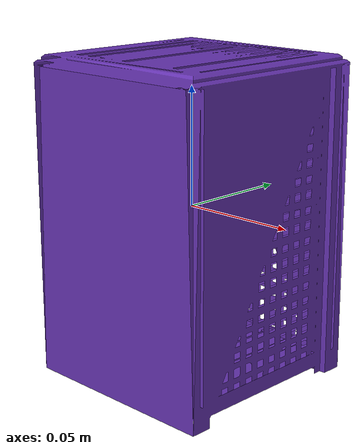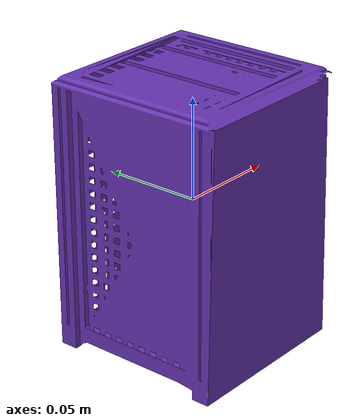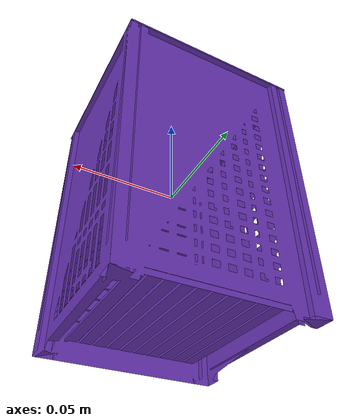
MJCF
<mujoco model="top_watertight_tiny">
  <default>
    <default group="2" type="mesh" contype="0" conaffinity="0">
      <geom group="2" type="mesh" contype="0" conaffinity="0"/>
    </default>
    <default group="3" type="mesh">
      <geom group="3" type="mesh"/>
    </default>
  </default>
  <asset>
    <mesh file="top_watertight_tiny.obj"/>
    <mesh file="top_watertight_tiny_collision_0.obj"/>
    <mesh file="top_watertight_tiny_collision_1.obj"/>
    <mesh file="top_watertight_tiny_collision_2.obj"/>
    <mesh file="top_watertight_tiny_collision_3.obj"/>
    <mesh file="top_watertight_tiny_collision_4.obj"/>
    <mesh file="top_watertight_tiny_collision_5.obj"/>
    <mesh file="top_watertight_tiny_collision_6.obj"/>
    <mesh file="top_watertight_tiny_collision_7.obj"/>
    <mesh file="top_watertight_tiny_collision_8.obj"/>
    <mesh file="top_watertight_tiny_collision_9.obj"/>
    <mesh file="top_watertight_tiny_collision_10.obj"/>
    <mesh file="top_watertight_tiny_collision_11.obj"/>
    <mesh file="top_watertight_tiny_collision_12.obj"/>
    <mesh file="top_watertight_tiny_collision_13.obj"/>
    <mesh file="top_watertight_tiny_collision_14.obj"/>
    <mesh file="top_watertight_tiny_collision_15.obj"/>
    <mesh file="top_watertight_tiny_collision_16.obj"/>
    <mesh file="top_watertight_tiny_collision_17.obj"/>
    <mesh file="top_watertight_tiny_collision_18.obj"/>
    <mesh file="top_watertight_tiny_collision_19.obj"/>
    <mesh file="top_watertight_tiny_collision_20.obj"/>
    <mesh file="top_watertight_tiny_collision_21.obj"/>
    <mesh file="top_watertight_tiny_collision_22.obj"/>
    <mesh file="top_watertight_tiny_collision_23.obj"/>
    <mesh file="top_watertight_tiny_collision_24.obj"/>
    <mesh file="top_watertight_tiny_collision_25.obj"/>
    <mesh file="top_watertight_tiny_collision_26.obj"/>
    <mesh file="top_watertight_tiny_collision_27.obj"/>
    <mesh file="top_watertight_tiny_collision_28.obj"/>
    <mesh file="top_watertight_tiny_collision_29.obj"/>
    <mesh file="top_watertight_tiny_collision_30.obj"/>
    <mesh file="top_watertight_tiny_collision_31.obj"/>
    <mesh file="top_watertight_tiny_collision_32.obj"/>
    <mesh file="top_watertight_tiny_collision_33.obj"/>
    <mesh file="top_watertight_tiny_collision_34.obj"/>
    <mesh file="top_watertight_tiny_collision_35.obj"/>
    <mesh file="top_watertight_tiny_collision_36.obj"/>
    <mesh file="top_watertight_tiny_collision_37.obj"/>
    <mesh file="top_watertight_tiny_collision_38.obj"/>
    <mesh file="top_watertight_tiny_collision_39.obj"/>
    <mesh file="top_watertight_tiny_collision_40.obj"/>
    <mesh file="top_watertight_tiny_collision_41.obj"/>
    <mesh file="top_watertight_tiny_collision_42.obj"/>
    <mesh file="top_watertight_tiny_collision_43.obj"/>
    <mesh file="top_watertight_tiny_collision_44.obj"/>
    <mesh file="top_watertight_tiny_collision_45.obj"/>
    <mesh file="top_watertight_tiny_collision_46.obj"/>
    <mesh file="top_watertight_tiny_collision_47.obj"/>
    <mesh file="top_watertight_tiny_collision_48.obj"/>
    <mesh file="top_watertight_tiny_collision_49.obj"/>
    <mesh file="top_watertight_tiny_collision_50.obj"/>
    <mesh file="top_watertight_tiny_collision_51.obj"/>
    <mesh file="top_watertight_tiny_collision_52.obj"/>
    <mesh file="top_watertight_tiny_collision_53.obj"/>
    <mesh file="top_watertight_tiny_collision_54.obj"/>
    <mesh file="top_watertight_tiny_collision_55.obj"/>
    <mesh file="top_watertight_tiny_collision_56.obj"/>
    <mesh file="top_watertight_tiny_collision_57.obj"/>
    <mesh file="top_watertight_tiny_collision_58.obj"/>
    <mesh file="top_watertight_tiny_collision_59.obj"/>
    <mesh file="top_watertight_tiny_collision_60.obj"/>
    <mesh file="top_watertight_tiny_collision_61.obj"/>
    <mesh file="top_watertight_tiny_collision_62.obj"/>
    <mesh file="top_watertight_tiny_collision_63.obj"/>
    <mesh file="top_watertight_tiny_collision_64.obj"/>
    <mesh file="top_watertight_tiny_collision_65.obj"/>
    <mesh file="top_watertight_tiny_collision_66.obj"/>
    <mesh file="top_watertight_tiny_collision_67.obj"/>
    <mesh file="top_watertight_tiny_collision_68.obj"/>
    <mesh file="top_watertight_tiny_collision_69.obj"/>
    <mesh file="top_watertight_tiny_collision_70.obj"/>
    <mesh file="top_watertight_tiny_collision_71.obj"/>
    <mesh file="top_watertight_tiny_collision_72.obj"/>
    <mesh file="top_watertight_tiny_collision_73.obj"/>
    <mesh file="top_watertight_tiny_collision_74.obj"/>
    <mesh file="top_watertight_tiny_collision_75.obj"/>
    <mesh file="top_watertight_tiny_collision_76.obj"/>
    <mesh file="top_watertight_tiny_collision_77.obj"/>
    <mesh file="top_watertight_tiny_collision_78.obj"/>
    <mesh file="top_watertight_tiny_collision_79.obj"/>
    <mesh file="top_watertight_tiny_collision_80.obj"/>
    <mesh file="top_watertight_tiny_collision_81.obj"/>
    <mesh file="top_watertight_tiny_collision_82.obj"/>
    <mesh file="top_watertight_tiny_collision_83.obj"/>
    <mesh file="top_watertight_tiny_collision_84.obj"/>
    <mesh file="top_watertight_tiny_collision_85.obj"/>
    <mesh file="top_watertight_tiny_collision_86.obj"/>
    <mesh file="top_watertight_tiny_collision_87.obj"/>
    <mesh file="top_watertight_tiny_collision_88.obj"/>
    <mesh file="top_watertight_tiny_collision_89.obj"/>
    <mesh file="top_watertight_tiny_collision_90.obj"/>
    <mesh file="top_watertight_tiny_collision_91.obj"/>
    <mesh file="top_watertight_tiny_collision_92.obj"/>
    <mesh file="top_watertight_tiny_collision_93.obj"/>
    <mesh file="top_watertight_tiny_collision_94.obj"/>
    <mesh file="top_watertight_tiny_collision_95.obj"/>
    <mesh file="top_watertight_tiny_collision_96.obj"/>
    <mesh file="top_watertight_tiny_collision_97.obj"/>
    <mesh file="top_watertight_tiny_collision_98.obj"/>
    <mesh file="top_watertight_tiny_collision_99.obj"/>
    <mesh file="top_watertight_tiny_collision_100.obj"/>
    <mesh file="top_watertight_tiny_collision_101.obj"/>
    <mesh file="top_watertight_tiny_collision_102.obj"/>
    <mesh file="top_watertight_tiny_collision_103.obj"/>
    <mesh file="top_watertight_tiny_collision_104.obj"/>
    <mesh file="top_watertight_tiny_collision_105.obj"/>
  </asset>
  <worldbody>
    <body name="top_watertight_tiny">
      <freejoint/>
      <geom mesh="top_watertight_tiny" group="2" type="mesh" rgba="0.4 0.2 0.7 1" contype="0" conaffinity="0"/>
      <geom mesh="top_watertight_tiny_collision_0" rgba="0.5214946148187062 0.6669990542578045 0.8893366383085172 1" group="3" type="mesh"/>
      <geom mesh="top_watertight_tiny_collision_1" rgba="0.25444723116024826 0.9374718286948988 0.1537972195743641 1" group="3" type="mesh"/>
      <geom mesh="top_watertight_tiny_collision_2" rgba="0.9871513610902786 0.5377261018294861 0.2691533615294954 1" group="3" type="mesh"/>
      <geom mesh="top_watertight_tiny_collision_3" rgba="0.24095902390836577 0.6345189449393268 0.9108104584195411 1" group="3" type="mesh"/>
      <geom mesh="top_watertight_tiny_collision_4" rgba="0.9261801332772949 0.3490811383539132 0.35193820045444646 1" group="3" type="mesh"/>
      <geom mesh="top_watertight_tiny_collision_5" rgba="0.19145840845345719 0.8375736521248036 0.7001198120105625 1" group="3" type="mesh"/>
      <geom mesh="top_watertight_tiny_collision_6" rgba="0.2339160132582031 0.2683003287585475 0.9849079710416163 1" group="3" type="mesh"/>
      <geom mesh="top_watertight_tiny_collision_7" rgba="0.06501598970905353 0.18320358514540402 0.2477250747525459 1" group="3" type="mesh"/>
      <geom mesh="top_watertight_tiny_collision_8" rgba="0.05121917701069789 0.6727602072884764 0.1170273498442872 1" group="3" type="mesh"/>
      <geom mesh="top_watertight_tiny_collision_9" rgba="0.10018089649843942 0.25374391122562745 0.2908030783480907 1" group="3" type="mesh"/>
      <geom mesh="top_watertight_tiny_collision_10" rgba="0.3723536425405063 0.4966341737991662 0.8568674919929754 1" group="3" type="mesh"/>
      <geom mesh="top_watertight_tiny_collision_11" rgba="0.16541806524481373 0.767483815778387 0.9301554923666598 1" group="3" type="mesh"/>
      <geom mesh="top_watertight_tiny_collision_12" rgba="0.618661061814672 0.6826177884880702 0.18867126372674559 1" group="3" type="mesh"/>
      <geom mesh="top_watertight_tiny_collision_13" rgba="0.11206403953633648 0.8696490254580189 0.3103200517205673 1" group="3" type="mesh"/>
      <geom mesh="top_watertight_tiny_collision_14" rgba="0.3337787760180637 0.925635184077848 0.9483719259095903 1" group="3" type="mesh"/>
      <geom mesh="top_watertight_tiny_collision_15" rgba="0.04851460555212295 0.5587700428104783 0.43490342623124023 1" group="3" type="mesh"/>
      <geom mesh="top_watertight_tiny_collision_16" rgba="0.22848770632677673 0.18076124138612848 0.9412212345120542 1" group="3" type="mesh"/>
      <geom mesh="top_watertight_tiny_collision_17" rgba="0.24229757607879554 0.47236287243786057 0.051513674444098045 1" group="3" type="mesh"/>
      <geom mesh="top_watertight_tiny_collision_18" rgba="0.6371639965687961 0.1626568003594715 0.21453245876339477 1" group="3" type="mesh"/>
      <geom mesh="top_watertight_tiny_collision_19" rgba="0.32415421164651326 0.4429768132779627 0.6408382269302618 1" group="3" type="mesh"/>
      <geom mesh="top_watertight_tiny_collision_20" rgba="0.6316488094815069 0.5862515407718126 0.7544320165269829 1" group="3" type="mesh"/>
      <geom mesh="top_watertight_tiny_collision_21" rgba="0.7292035942615932 0.628629839277002 0.9104558179988234 1" group="3" type="mesh"/>
      <geom mesh="top_watertight_tiny_collision_22" rgba="0.6156395534756968 0.006146065455576055 0.4172408688510195 1" group="3" type="mesh"/>
      <geom mesh="top_watertight_tiny_collision_23" rgba="0.30127789130793925 0.9139777110014912 0.11108753359640955 1" group="3" type="mesh"/>
      <geom mesh="top_watertight_tiny_collision_24" rgba="0.026725239312858973 0.08924585173306199 0.3110202360265971 1" group="3" type="mesh"/>
      <geom mesh="top_watertight_tiny_collision_25" rgba="0.30192634728762346 0.023070983622084484 0.3645186635849812 1" group="3" type="mesh"/>
      <geom mesh="top_watertight_tiny_collision_26" rgba="0.40057462254227894 0.1515321153025193 0.5969567867732081 1" group="3" type="mesh"/>
      <geom mesh="top_watertight_tiny_collision_27" rgba="0.9012852206445593 0.1365032297218306 0.7656942592995521 1" group="3" type="mesh"/>
      <geom mesh="top_watertight_tiny_collision_28" rgba="0.38140991735961804 0.14864106251398457 0.47937455664048245 1" group="3" type="mesh"/>
      <geom mesh="top_watertight_tiny_collision_29" rgba="0.39805060459888364 0.9459543608933446 0.9775925107590286 1" group="3" type="mesh"/>
      <geom mesh="top_watertight_tiny_collision_30" rgba="0.3192490673052353 0.9357361690788737 0.21795103420667394 1" group="3" type="mesh"/>
      <geom mesh="top_watertight_tiny_collision_31" rgba="0.45098489043851064 0.7735737420448953 0.7767367202803706 1" group="3" type="mesh"/>
      <geom mesh="top_watertight_tiny_collision_32" rgba="0.7169917684382984 0.6934761280067187 0.673408846081604 1" group="3" type="mesh"/>
      <geom mesh="top_watertight_tiny_collision_33" rgba="0.4657038815370592 0.8352778926026238 0.3665757258146457 1" group="3" type="mesh"/>
      <geom mesh="top_watertight_tiny_collision_34" rgba="0.2931030062247908 0.6219014902896546 0.9585478961962327 1" group="3" type="mesh"/>
      <geom mesh="top_watertight_tiny_collision_35" rgba="0.5470721148842209 0.719120446763223 0.5252033409289124 1" group="3" type="mesh"/>
      <geom mesh="top_watertight_tiny_collision_36" rgba="0.6371060177474516 0.7240222145918215 0.42318740788854425 1" group="3" type="mesh"/>
      <geom mesh="top_watertight_tiny_collision_37" rgba="0.8838873758563892 0.3630560528435878 0.13048258776806154 1" group="3" type="mesh"/>
      <geom mesh="top_watertight_tiny_collision_38" rgba="0.23120763112654852 0.33453389956065904 0.0575847152587583 1" group="3" type="mesh"/>
      <geom mesh="top_watertight_tiny_collision_39" rgba="0.44726514620479196 0.07481650964256348 0.2337433147571949 1" group="3" type="mesh"/>
      <geom mesh="top_watertight_tiny_collision_40" rgba="0.21169151033773392 0.8281501260560141 0.8370771588450561 1" group="3" type="mesh"/>
      <geom mesh="top_watertight_tiny_collision_41" rgba="0.2682083701151 0.8215168396734152 0.1833473876493994 1" group="3" type="mesh"/>
      <geom mesh="top_watertight_tiny_collision_42" rgba="0.8334882194448824 0.26479260690413475 0.6217071112089138 1" group="3" type="mesh"/>
      <geom mesh="top_watertight_tiny_collision_43" rgba="0.13728686413640134 0.8033849959412734 0.1702292550309623 1" group="3" type="mesh"/>
      <geom mesh="top_watertight_tiny_collision_44" rgba="0.9596290120715917 0.291187402668699 0.3025222324747249 1" group="3" type="mesh"/>
      <geom mesh="top_watertight_tiny_collision_45" rgba="0.8120043909024145 0.9702972689832672 0.878358918692162 1" group="3" type="mesh"/>
      <geom mesh="top_watertight_tiny_collision_46" rgba="0.23271538290584348 0.8786463534191177 0.7550433045385357 1" group="3" type="mesh"/>
      <geom mesh="top_watertight_tiny_collision_47" rgba="0.4085569217941195 0.4471677232737812 0.3280102288552875 1" group="3" type="mesh"/>
      <geom mesh="top_watertight_tiny_collision_48" rgba="0.2903137460219447 0.5821513837257336 0.04471348533775965 1" group="3" type="mesh"/>
      <geom mesh="top_watertight_tiny_collision_49" rgba="0.7405309846908289 0.1563249945863211 0.8235221057723104 1" group="3" type="mesh"/>
      <geom mesh="top_watertight_tiny_collision_50" rgba="0.5350022243914291 0.4501150921788586 0.11676513501223296 1" group="3" type="mesh"/>
      <geom mesh="top_watertight_tiny_collision_51" rgba="0.1264538358192605 0.7382140895444965 0.2608990917296362 1" group="3" type="mesh"/>
      <geom mesh="top_watertight_tiny_collision_52" rgba="0.5442698917802132 0.4704588543503325 0.3820337360030833 1" group="3" type="mesh"/>
      <geom mesh="top_watertight_tiny_collision_53" rgba="0.29565156760132705 0.3143336600201908 0.8101102107153221 1" group="3" type="mesh"/>
      <geom mesh="top_watertight_tiny_collision_54" rgba="0.21100451831155964 0.8146527939231308 0.019598693706504577 1" group="3" type="mesh"/>
      <geom mesh="top_watertight_tiny_collision_55" rgba="0.15035259281819846 0.4469669351691099 0.7269215291813453 1" group="3" type="mesh"/>
      <geom mesh="top_watertight_tiny_collision_56" rgba="0.1685164291468727 0.6307229651927174 0.35436579477226005 1" group="3" type="mesh"/>
      <geom mesh="top_watertight_tiny_collision_57" rgba="0.062258949854809176 0.30577026350703196 0.4271043610924373 1" group="3" type="mesh"/>
      <geom mesh="top_watertight_tiny_collision_58" rgba="0.6074889403992146 0.3821233375599493 0.35154401445731465 1" group="3" type="mesh"/>
      <geom mesh="top_watertight_tiny_collision_59" rgba="0.5174758967183212 0.7801826467192446 0.40297525695083725 1" group="3" type="mesh"/>
      <geom mesh="top_watertight_tiny_collision_60" rgba="0.3827633082040104 0.5795517401454716 0.2896678286437401 1" group="3" type="mesh"/>
      <geom mesh="top_watertight_tiny_collision_61" rgba="0.6805724604019796 0.6116093072768743 0.026525328713838836 1" group="3" type="mesh"/>
      <geom mesh="top_watertight_tiny_collision_62" rgba="0.3037902244160007 0.4325438883853957 0.7034056175461858 1" group="3" type="mesh"/>
      <geom mesh="top_watertight_tiny_collision_63" rgba="0.5232985876434043 0.42023402509950025 0.2037702013809779 1" group="3" type="mesh"/>
      <geom mesh="top_watertight_tiny_collision_64" rgba="0.7337572253764834 0.4836424430744478 0.9382156303564227 1" group="3" type="mesh"/>
      <geom mesh="top_watertight_tiny_collision_65" rgba="0.5442096652512552 0.03672459407186579 0.06919692720291748 1" group="3" type="mesh"/>
      <geom mesh="top_watertight_tiny_collision_66" rgba="0.16648457600391464 0.5819613320755895 0.9889581722746519 1" group="3" type="mesh"/>
      <geom mesh="top_watertight_tiny_collision_67" rgba="0.7488394714529254 0.4898875982814377 0.7595990545986171 1" group="3" type="mesh"/>
      <geom mesh="top_watertight_tiny_collision_68" rgba="0.5482590369972061 0.6614242869668218 0.992462637647913 1" group="3" type="mesh"/>
      <geom mesh="top_watertight_tiny_collision_69" rgba="0.8963047472885602 0.586690884608325 0.6056409217060612 1" group="3" type="mesh"/>
      <geom mesh="top_watertight_tiny_collision_70" rgba="0.012704013964336847 0.14611591244778088 0.19801476819345953 1" group="3" type="mesh"/>
      <geom mesh="top_watertight_tiny_collision_71" rgba="0.2110589494750652 0.738355544448269 0.06548339424453231 1" group="3" type="mesh"/>
      <geom mesh="top_watertight_tiny_collision_72" rgba="0.6594903317295945 0.540654747244405 0.11080817960632994 1" group="3" type="mesh"/>
      <geom mesh="top_watertight_tiny_collision_73" rgba="0.20079138728521728 0.312052195824427 0.23060301043122666 1" group="3" type="mesh"/>
      <geom mesh="top_watertight_tiny_collision_74" rgba="0.9361628322050777 0.6866837614009816 0.21222052739112574 1" group="3" type="mesh"/>
      <geom mesh="top_watertight_tiny_collision_75" rgba="0.430457443082813 0.9312679597420204 0.49945258367128254 1" group="3" type="mesh"/>
      <geom mesh="top_watertight_tiny_collision_76" rgba="0.8761458048630726 0.10693465224952792 0.98396268749349 1" group="3" type="mesh"/>
      <geom mesh="top_watertight_tiny_collision_77" rgba="0.09045280715175996 0.7366362205043474 0.2939419584135098 1" group="3" type="mesh"/>
      <geom mesh="top_watertight_tiny_collision_78" rgba="0.35596540869997584 0.25891358364571204 0.01586874546882322 1" group="3" type="mesh"/>
      <geom mesh="top_watertight_tiny_collision_79" rgba="0.06212201138341222 0.9999342432787129 0.48891596539792037 1" group="3" type="mesh"/>
      <geom mesh="top_watertight_tiny_collision_80" rgba="0.8101683818042638 0.9662028952717747 0.9445249572235537 1" group="3" type="mesh"/>
      <geom mesh="top_watertight_tiny_collision_81" rgba="0.9509529961087612 0.2985973451589615 0.14986134521527705 1" group="3" type="mesh"/>
      <geom mesh="top_watertight_tiny_collision_82" rgba="0.13263441064407067 0.1784590924486953 0.4247146417979486 1" group="3" type="mesh"/>
      <geom mesh="top_watertight_tiny_collision_83" rgba="0.5639961498840712 0.5239162810345386 0.31049006172153915 1" group="3" type="mesh"/>
      <geom mesh="top_watertight_tiny_collision_84" rgba="0.5228905984957166 0.2120591868824987 0.21767358886059507 1" group="3" type="mesh"/>
      <geom mesh="top_watertight_tiny_collision_85" rgba="0.7733445292326533 0.7940443920511169 0.15667092444818098 1" group="3" type="mesh"/>
      <geom mesh="top_watertight_tiny_collision_86" rgba="0.2799152798366943 0.39075723019074426 0.795937819576739 1" group="3" type="mesh"/>
      <geom mesh="top_watertight_tiny_collision_87" rgba="0.26584314916648943 0.4798648841007127 0.9384448828899051 1" group="3" type="mesh"/>
      <geom mesh="top_watertight_tiny_collision_88" rgba="0.3215914108308542 0.5602834707882564 0.2720807327610488 1" group="3" type="mesh"/>
      <geom mesh="top_watertight_tiny_collision_89" rgba="0.4914685921795443 0.2126068483879816 0.3003367471809457 1" group="3" type="mesh"/>
      <geom mesh="top_watertight_tiny_collision_90" rgba="0.684637107204061 0.9534847139547403 0.05272469025221049 1" group="3" type="mesh"/>
      <geom mesh="top_watertight_tiny_collision_91" rgba="0.06104495034536184 0.7031560994087949 0.818562071469818 1" group="3" type="mesh"/>
      <geom mesh="top_watertight_tiny_collision_92" rgba="0.5793784834030835 0.5904339712212078 0.3772174577004904 1" group="3" type="mesh"/>
      <geom mesh="top_watertight_tiny_collision_93" rgba="0.07059022321577968 0.5306944864891945 0.9233359352810712 1" group="3" type="mesh"/>
      <geom mesh="top_watertight_tiny_collision_94" rgba="0.3501996565063298 0.7119206301759565 0.43246345406181985 1" group="3" type="mesh"/>
      <geom mesh="top_watertight_tiny_collision_95" rgba="0.16352009386312338 0.7636926909785829 0.22651959332204186 1" group="3" type="mesh"/>
      <geom mesh="top_watertight_tiny_collision_96" rgba="0.5578138194714004 0.4076052491246819 0.7075426405328117 1" group="3" type="mesh"/>
      <geom mesh="top_watertight_tiny_collision_97" rgba="0.7385140146358762 0.43727649678787484 0.11566349089700323 1" group="3" type="mesh"/>
      <geom mesh="top_watertight_tiny_collision_98" rgba="0.49309727011387017 0.1207447116833672 0.6393850838451496 1" group="3" type="mesh"/>
      <geom mesh="top_watertight_tiny_collision_99" rgba="0.5404759120144519 0.5557157639146348 0.7500474502409588 1" group="3" type="mesh"/>
      <geom mesh="top_watertight_tiny_collision_100" rgba="0.49557392505105324 0.7556727025585784 0.007242220218164452 1" group="3" type="mesh"/>
      <geom mesh="top_watertight_tiny_collision_101" rgba="0.6471206426183687 0.6749582958422234 0.3527093598163703 1" group="3" type="mesh"/>
      <geom mesh="top_watertight_tiny_collision_102" rgba="0.6604899730503981 0.47341131518606827 0.9409772400013546 1" group="3" type="mesh"/>
      <geom mesh="top_watertight_tiny_collision_103" rgba="0.43970774039524974 0.8221644622776833 0.8542748334371961 1" group="3" type="mesh"/>
      <geom mesh="top_watertight_tiny_collision_104" rgba="0.08649899089958069 0.9895709177365609 0.3750016878764565 1" group="3" type="mesh"/>
      <geom mesh="top_watertight_tiny_collision_105" rgba="0.8812954552325357 0.8558043152198325 0.46301348553387023 1" group="3" type="mesh"/>
    </body>
  </worldbody>
</mujoco>
